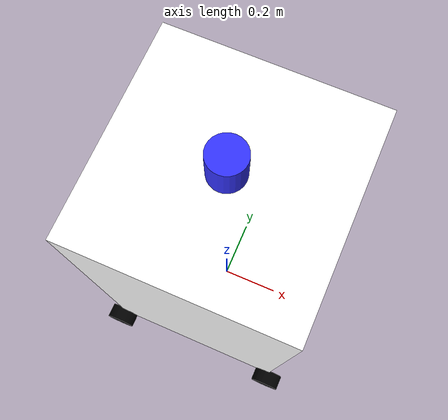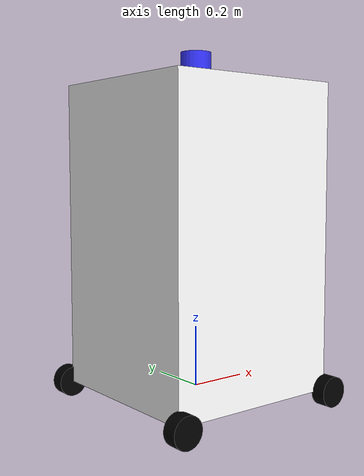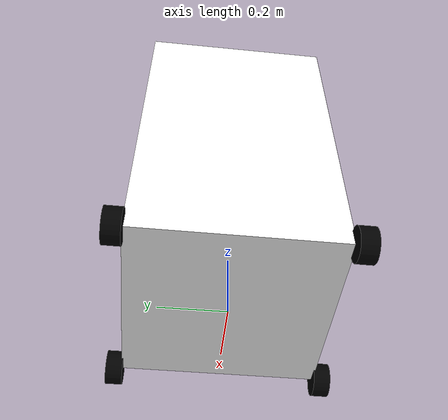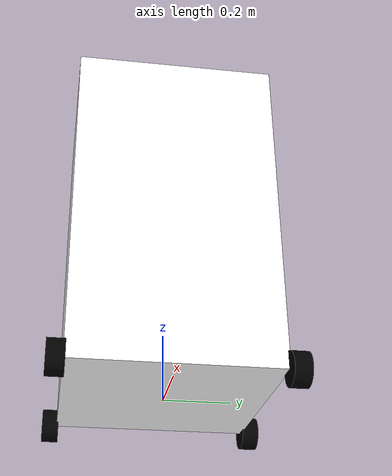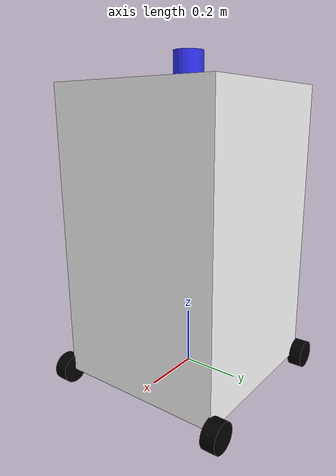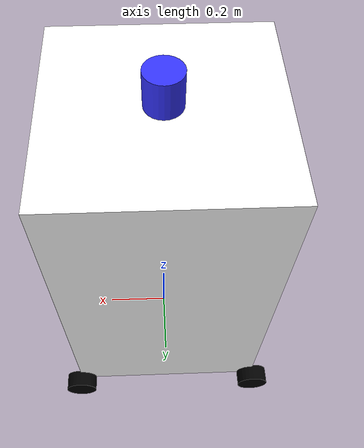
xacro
<?xml version="1.0"?>
<robot xmlns:xacro="http://www.ros.org/wiki/xacro" >

<xacro:include filename="inertial_macros.xacro"/>

  <material name="white">
    <color rgba="1 1 1 1" />
  </material>

  <material name="orange">
    <color rgba="1 0.3 0.1 1"/>
  </material>

  <material name="blue">
    <color rgba="0.2 0.2 1 1"/>
  </material>

  <material name="black">
    <color rgba="0 0 0 1"/>
  </material>

  <material name="red">
    <color rgba="1 0 0 1"/>
  </material>

  <!-- BASE LINK -->

  <link name="base_link">

  </link>

  <!-- CHASSIS LINK -->

  <joint name="chassis_joint" type="fixed">
      <parent link="base_link"/>
      <child link="chassis"/>
      <origin xyz="-0.3 0 0"/>
  </joint>

  <link name="chassis">
      <visual>
          <origin xyz="0.3 0 0.5"/>
          <geometry>
              <box size="0.6 0.6 1"/>
          </geometry>
          <material name="white"/>
      </visual>
      <collision>
          <origin xyz="0.3 0 0.5"/>
          <geometry>
              <box size="0.6 0.6 1"/>
          </geometry>
      </collision>
      <xacro:inertial_box mass="35" x="0.6" y="0.6" z="1">
          <origin xyz="0.3 0 0.5" rpy="0 0 0"/>
      </xacro:inertial_box>
  </link>

  <!-- Front left wheel -->
  <link name="wheel_front_left">
    <visual>
      <geometry>
        <cylinder radius="0.05" length="0.05"/>
      </geometry>
      <origin xyz="0 0 0" rpy="-${pi/2} 0 0"/>
      <material name="black"/>
    </visual>

    <collision>
      <geometry>
        <cylinder radius="0.05" length="0.05"/>
      </geometry>
      <origin xyz="0 0 0" rpy="-${pi/2} 0 0"/>
    </collision>

    <xacro:inertial_cylinder mass="0.1" length="0.04" radius="0.05">
            <origin xyz="0 0 0" rpy="0 0 0"/>
    </xacro:inertial_cylinder>
</link>

<joint name="joint_front_left" type="continuous">
    <parent link="base_link"/>
    <child link="wheel_front_left"/>
    <origin xyz="0.3 0.32 0" rpy="0 0 0"/>
    <axis xyz="0 1 0"/>
    <dynamics damping="0.0" friction="0.0"/>
  </joint>

  <!-- Front right wheel -->

  <link name="wheel_front_right">
    <visual>
      <geometry>
        <cylinder radius="0.05" length="0.05"/>
      </geometry>
      <origin xyz="0 0 0" rpy="${pi/2} 0 0"/>
      <material name="black"/>
    </visual>
    <collision>
      <geometry>
        <cylinder radius="0.05" length="0.05"/>
      </geometry>
      <origin xyz="0 0 0" rpy="${pi/2} 0 0"/>

    </collision>

    <xacro:inertial_cylinder mass="0.1" length="0.04" radius="0.05">
            <origin xyz="0 0 0" rpy="0 0 0"/>
    </xacro:inertial_cylinder>
</link>

  <joint name="joint_front_right" type="continuous">
    <parent link="base_link"/>
    <child link="wheel_front_right"/>
    <origin xyz="0.3 -0.32 0" rpy="0 0 0"/>
    <axis xyz="0 1 0"/>
    <dynamics damping="0.0" friction="0.0"/>
  </joint>

 <!-- Rear left wheel -->

 <link name="wheel_rear_left">
  <visual>
    <geometry>
      <cylinder radius="0.05" length="0.05"/>
    </geometry>
    <origin xyz="0 0 0" rpy="-${pi/2} 0 0"/>
    <material name="black"/>
  </visual>
  <collision>
    <geometry>
      <cylinder radius="0.05" length="0.05"/>
    </geometry>
    <origin xyz="0 0 0" rpy="-${pi/2} 0 0"/>
  </collision>

  <xacro:inertial_cylinder mass="0.1" length="0.04" radius="0.05">
      <origin xyz="0 0 0" rpy="0 0 0"/>
  </xacro:inertial_cylinder>

</link>

<joint name="joint_rear_left" type="continuous">
  <parent link="base_link"/>
  <child link="wheel_rear_left"/>
  <origin xyz="-0.3 0.32 0" rpy="0 0 0"/>
  <axis xyz="0 1 0"/>
  <dynamics damping="0.0" friction="0.0"/>
</joint>

<!-- Rear right wheel -->

 <link name="wheel_rear_right">
  <visual>
    <geometry>
      <cylinder radius="0.05" length="0.05"/>
    </geometry>
    <origin xyz="0 0 0" rpy="${pi/2} 0 0"/>
    <material name="black"/>
  </visual>
  <collision>
    <geometry>
      <cylinder radius="0.05" length="0.05"/>
    </geometry>
    <origin xyz="0 0 0" rpy="${pi/2} 0 0"/>
  </collision>
  <xacro:inertial_cylinder mass="0.1" length="0.04" radius="0.05">
            <origin xyz="0 0 0" rpy="0 0 0"/>
  </xacro:inertial_cylinder>
</link>

<joint name="joint_rear_right" type="continuous">
  <parent link="base_link"/>
  <child link="wheel_rear_right"/>
  <origin xyz="-0.3 -0.32 0" rpy="0 0 0"/>
  <axis xyz="0 1 0"/>
  <dynamics damping="0.0" friction="0.0"/>
</joint>

<!-- gazebo-->

  <gazebo reference ="joint_front_left">
    <mu1 value=".001"/>
    <mu2 value=".001"/>
  </gazebo>

  <gazebo reference ="joint_front_right">
    <mu1 value=".001"/>
    <mu2 value=".001"/>
  </gazebo>

<gazebo reference ="joint_rear_left">
    <mu1 value=".001"/>
    <mu2 value=".001"/>
  </gazebo>

  <gazebo reference ="joint_rear_right">
    <mu1 value=".001"/>
    <mu2 value=".001"/>
  </gazebo>

  <!-- LiDAR sensor -->

  <joint name="joint_lidar" type="fixed">
    <parent link="base_link"/>
    <child link="lidar_link"/>
    <origin xyz="0 0 1" rpy="0 0 0"/>
  </joint>

  <link name="lidar_link">
    <visual>
      <geometry>
        <cylinder radius="0.05" length="0.1"/>
      </geometry>
      <origin xyz="0 0 .05" rpy="0 0 0"/>
      <material name="blue"/>
    </visual>
  </link>

</robot>
